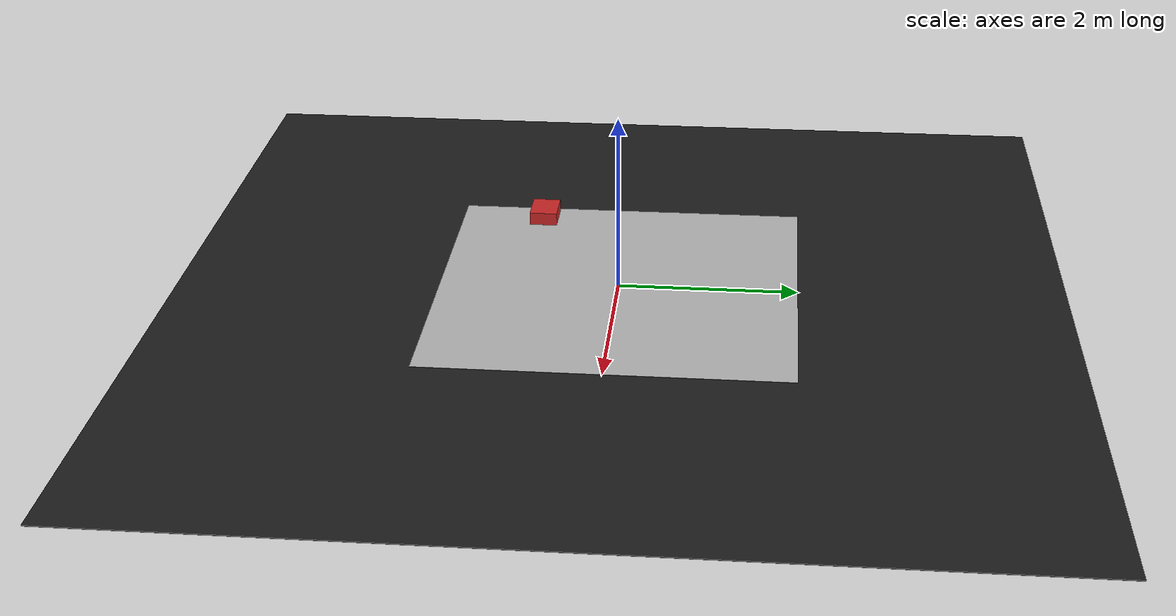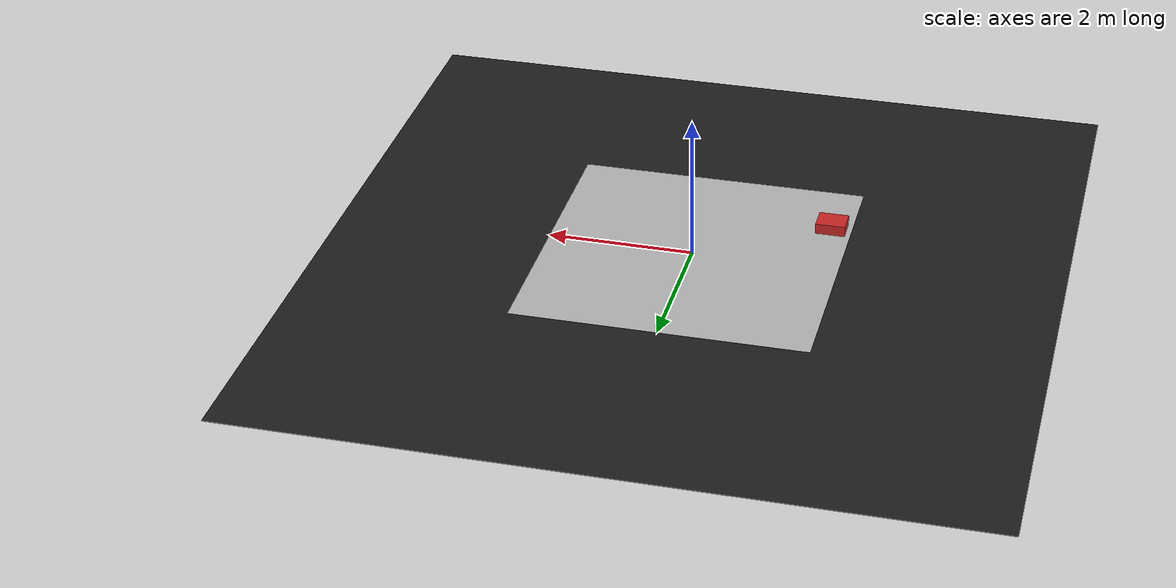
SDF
<sdf version="1.6">
 <world name="default">
  <model name="track_on_line">
   <static>1</static>
   <link name="track_one_line_link">
    <visual name="track_one_line_visual">
     <cast_shadows>0</cast_shadows>
     <geometry><plane><normal>0 0 1</normal><size>4 4</size></plane></geometry>
     <material>
      <script>
       <uri>model://track_one_line/materials/scripts</uri>
       <uri>model://track_one_line/materials/textures/</uri>
       <name>track_one_line</name>
      </script>
     </material>
    </visual>
    <collision name="track_one_line_collision">
     <geometry><plane><normal>0 0 1</normal><size>4 4</size></plane></geometry>
     <surface><friction><ode><mu>1</mu><mu2>1</mu2></ode></friction></surface>
    </collision>
   </link>
  </model>
  <scene>
   <ambient>0 0 0 1</ambient>
   <shadows>0</shadows>
   <grid>0</grid>
   <background>0.7 0.7 0.7 1</background>
  </scene>
  <light name="sun" type="directional">
   <pose>0 0 10 0 -0 0</pose>
   <diffuse>0.8 0.8 0.8 1</diffuse>
   <specular>0.1 0.1 0.1 1</specular>
   <attenuation>
    <range>1000</range>
    <constant>0.9</constant>
    <linear>0.01</linear>
    <quadratic>0.001</quadratic>
   </attenuation>
   <direction>-0.5 0.5 -1</direction>
  </light>
  <model name="ground2">
   <pose>0 0 -0.1 0 -0 0</pose>
   <static>1</static>
   <link name="ground">
    <collision name="ground_coll"><geometry><box><size>8 8 0.01</size></box></geometry></collision>
    <visual name="ground_vis">
     <geometry><box><size>10 10 0.01</size></box></geometry>
     <material>
      <script><uri>file://media/materials/scripts/gazebo.material</uri><name>Gazebo/FlatBlack</name></script>
     </material>
    </visual>
   </link>
  </model>
  <gravity>0 0 -9.8</gravity>
  <magnetic_field>6e-06 2.3e-05 -4.2e-05</magnetic_field>
  <atmosphere type="adiabatic"/>
  <physics name="default_physics" default="0" type="ode">
   <max_step_size>0.001</max_step_size>
   <real_time_factor>1</real_time_factor>
   <real_time_update_rate>1000</real_time_update_rate>
   <ode>
    <solver>
     <iters>10</iters>
     <type>quick</type>
     <sor>1.3</sor>
     <use_dynamic_moi_rescaling>0</use_dynamic_moi_rescaling>
    </solver>
    <constraints>
     <cfm>0</cfm>
     <erp>0.2</erp>
     <contact_max_correcting_vel>100</contact_max_correcting_vel>
     <contact_surface_layer>0.001</contact_surface_layer>
    </constraints>
   </ode>
  </physics>
  <spherical_coordinates>
   <surface_model>EARTH_WGS84</surface_model>
   <latitude_deg>0</latitude_deg>
   <longitude_deg>0</longitude_deg>
   <elevation>0</elevation>
   <heading_deg>0</heading_deg>
  </spherical_coordinates>
  <light name="user_point_light_2" type="point">
   <pose>-0.948146 0.604519 1 0 -0 0</pose>
   <diffuse>0.5 0.5 0.5 1</diffuse>
   <specular>0.1 0.1 0.1 1</specular>
   <attenuation>
    <range>20</range>
    <constant>0.5</constant>
    <linear>0.01</linear>
    <quadratic>0.001</quadratic>
   </attenuation>
   <cast_shadows>0</cast_shadows>
   <direction>0 0 -1</direction>
  </light>
  <light name="user_point_light_6" type="point">
   <pose>1.63854 1.69565 1 0 -0 0</pose>
   <diffuse>0.5 0.5 0.5 1</diffuse>
   <specular>0.1 0.1 0.1 1</specular>
   <attenuation>
    <range>20</range>
    <constant>0.5</constant>
    <linear>0.01</linear>
    <quadratic>0.001</quadratic>
   </attenuation>
   <cast_shadows>0</cast_shadows>
   <direction>0 0 -1</direction>
  </light>
  <light name="user_point_light_7" type="point">
   <pose>0.42 -3.31 1 0 -0 0</pose>
   <diffuse>0.5 0.5 0.5 1</diffuse>
   <specular>0.1 0.1 0.1 1</specular>
   <attenuation>
    <range>20</range>
    <constant>0.5</constant>
    <linear>0.01</linear>
    <quadratic>0.001</quadratic>
   </attenuation>
   <cast_shadows>0</cast_shadows>
   <direction>0 0 -1</direction>
  </light>
  <light name="user_point_light_8" type="point">
   <pose>-1.8 1.5 1 0 -0 0</pose>
   <diffuse>0.5 0.5 0.5 1</diffuse>
   <specular>0.1 0.1 0.1 1</specular>
   <attenuation>
    <range>20</range>
    <constant>0.5</constant>
    <linear>0.01</linear>
    <quadratic>0.001</quadratic>
   </attenuation>
   <cast_shadows>0</cast_shadows>
   <direction>0 0 -1</direction>
  </light>
  <audio><device>default</device></audio>
  <model name="red_box_0">
   <link name="link">
    <inertial>
     <mass>1</mass>
     <inertia>
      <ixx>0.166667</ixx>
      <ixy>0</ixy>
      <ixz>0</ixz>
      <iyy>0.166667</iyy>
      <iyz>0</iyz>
      <izz>0.166667</izz>
     </inertia>
    </inertial>
    <visual name="visual">
     <geometry><box><size>0.406757 0.320744 0.303923</size></box></geometry>
     <material>
      <script><name>Gazebo/Red</name><uri>file://media/materials/scripts/gazebo.material</uri></script>
      <shader type="vertex"><normal_map>__default__</normal_map></shader>
      <ambient>1 0 0 1</ambient>
      <diffuse>1 0 0 1</diffuse>
      <specular>0.1 0.1 0.1 1</specular>
      <emissive>0 0 0 1</emissive>
     </material>
    </visual>
    <collision name="collision">
     <geometry><box><size>0.406757 0.320744 0.303923</size></box></geometry>
     <surface>
      <friction>
       <ode><mu>1</mu><mu2>1</mu2><fdir1>0 0 0</fdir1><slip1>0</slip1><slip2>0</slip2></ode>
       <torsional>
        <coefficient>1</coefficient>
        <patch_radius>0</patch_radius>
        <surface_radius>0</surface_radius>
        <use_patch_radius>1</use_patch_radius>
        <ode><slip>0</slip></ode>
       </torsional>
      </friction>
      <bounce><restitution_coefficient>0</restitution_coefficient><threshold>1e+06</threshold></bounce>
      <contact>
       <collide_without_contact>0</collide_without_contact>
       <collide_without_contact_bitmask>1</collide_without_contact_bitmask>
       <collide_bitmask>1</collide_bitmask>
       <ode>
        <soft_cfm>0</soft_cfm>
        <soft_erp>0.2</soft_erp>
        <kp>1e+13</kp>
        <kd>1</kd>
        <max_vel>0.01</max_vel>
        <min_depth>0</min_depth>
       </ode>
       <bullet>
        <split_impulse>1</split_impulse>
        <split_impulse_penetration_threshold>-0.01</split_impulse_penetration_threshold>
        <soft_cfm>0</soft_cfm>
        <soft_erp>0.2</soft_erp>
        <kp>1e+13</kp>
        <kd>1</kd>
       </bullet>
      </contact>
     </surface>
    </collision>
   </link>
   <static>0</static>
   <pose>-1.72442 -1.02587 0.0 0 -0 0</pose>
  </model>
 </world>
</sdf>
